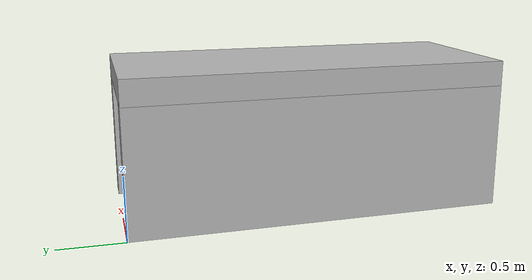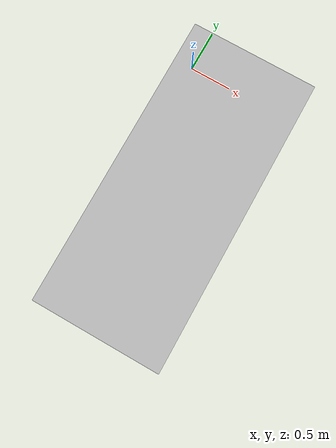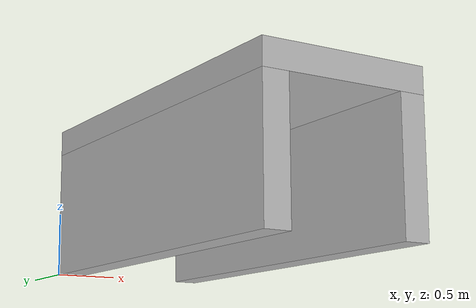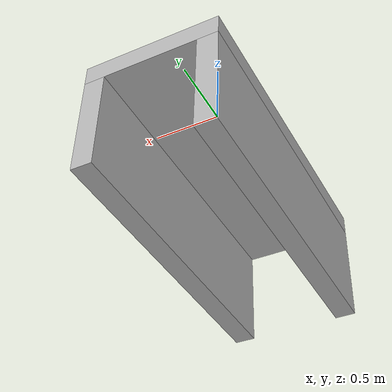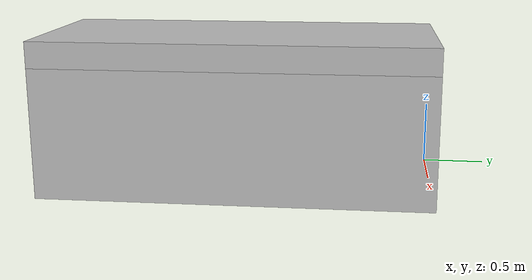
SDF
<?xml version="1.0"?>
<sdf version="1.6">
  <model name="tunnel">
    <static>true</static>

    <link name="tunnel_left">
      <pose frame=''>0.1 -1.5 0.50 0 -0 0</pose>
      <collision name="collision_left">
        <geometry>
          <box>
            <size>0.2 3.0 1.0</size>
          </box>
        </geometry>
      </collision>

      <visual name="visual_left">
	<pose frame=''>0 0 0 0 -0 0</pose>
        <geometry>
          <box>
            <size>0.2 3.0 1.0</size>
          </box>
	</geometry>

	    <material>
		<script>
			<uri>model://tunnel/materials/scripts</uri>
			<uri>model://tunnel/materials/textures</uri>
			<name>tunnel</name>
		</script>
	    </material>

      </visual>

    </link>

    <link name="tunnel_right">
      <pose frame=''>1.2 -1.5 0.5 0 -0 0</pose>
      <collision name="collision_right">
        <geometry>
          <box>
            <size>0.2 3.0 1.0</size>
          </box>
        </geometry>
      </collision>

      <visual name="visual_right">
	<pose frame=''>0 0 0 0 -0 0</pose>
        <geometry>
          <box>
            <size>0.2 3.0 1.0</size>
          </box>
	</geometry>

	    <material>
		<script>
			<uri>model://tunnel/materials/scripts</uri>
			<uri>model://tunnel/materials/textures</uri>
			<name>tunnel</name>
		</script>
	    </material>

      </visual>

    </link>

    <link name="tunnel_top">
      <pose frame=''>0.65 -1.5 1.1 0 -0 0</pose>
      <collision name="collision_top">
        <geometry>
          <box>
            <size>1.3 3.0 0.2</size>
          </box>
        </geometry>
      </collision>

      <visual name="visual_top">
	<pose frame=''>0 0 0 0 -0 0</pose>
        <geometry>
          <box>
            <size>1.3 3.0 0.2</size>
          </box>
	</geometry>

	    <material>
		<script>
			<uri>model://tunnel/materials/scripts</uri>
			<uri>model://tunnel/materials/textures</uri>
			<name>tunnel</name>
		</script>
	    </material>
      </visual>
    </link>

  </model>
</sdf>
